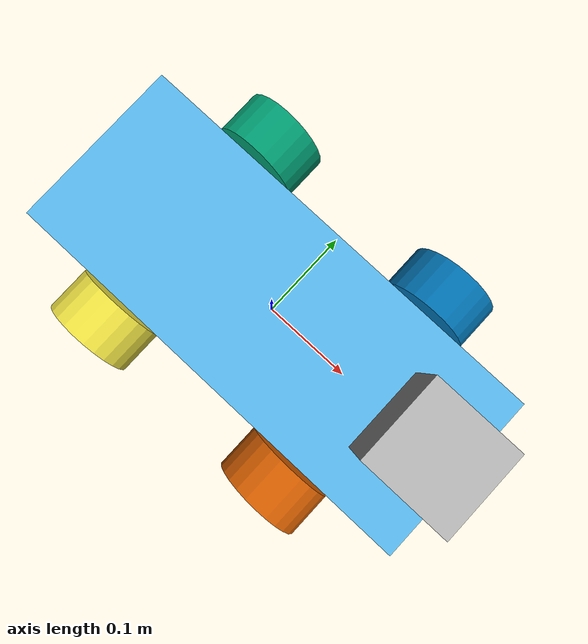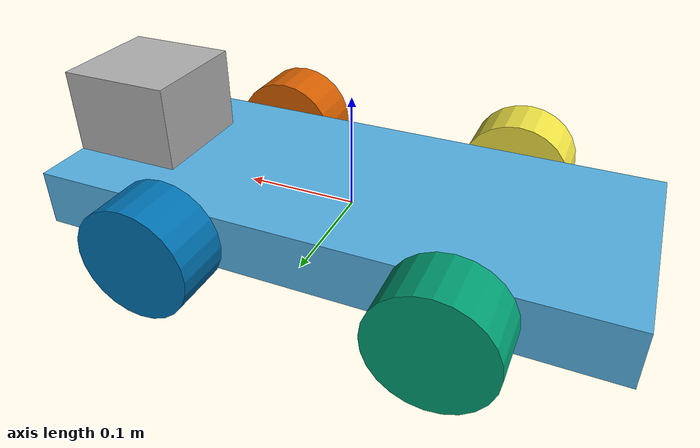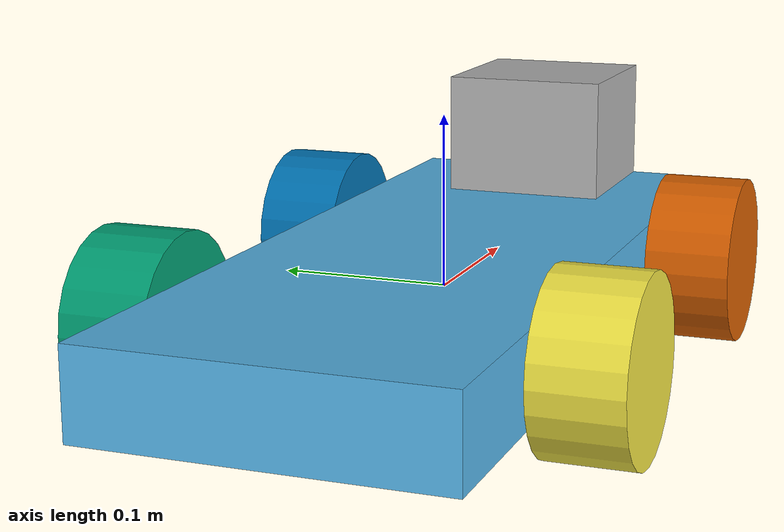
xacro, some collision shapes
<?xml version='1.0'?>

<robot name="my_robot" xmlns:xacro="http://www.ros.org/wiki/xacro">
  <xacro:include filename="$(find my_robot)/urdf/my_robot.gazebo" />
  <link name="robot_footprint"></link>

  <joint name="robot_footprint_joint" type="fixed">
    <origin xyz="0 0 0" rpy="0 0 0" />
    <parent link="robot_footprint"/>
    <child link="chassis" />
  </joint>

  <link name='chassis'>
    <pose>0 0 0.1 0 0 0</pose>

    <inertial>
      <mass value="10.0"/>
      <origin xyz="0.0 0 0" rpy=" 0 0 0"/>
      <inertia
          ixx="0.1" ixy="0" ixz="0"
          iyy="0.1" iyz="0"
          izz="0.1"
      />
    </inertial>

    <collision name='collision'>
      <origin xyz="0 0 0" rpy=" 0 0 0"/>
      <geometry>
        <box size=".5 .2 .05"/>
      </geometry>
    </collision>

    <visual name='chassis_visual'>
      <origin xyz="0 0 0" rpy=" 0 0 0"/>
      <geometry>
        <box size=".5 .2 .05"/>
      </geometry>
    </visual>
  </link>

  <link name='left_back_wheel'>
    <inertial>
      <mass value="5.0"/>
      <origin xyz="0 0 0" rpy="0 1.5707 1.5707"/>
      <inertia
          ixx="0.1" ixy="0" ixz="0"
          iyy="0.1" iyz="0"
          izz="0.1"
      />
    </inertial>

    <collision name='left_back_wheel_collision'>
      <origin xyz="0 0 0" rpy="0 1.5707 1.5707"/>
      <geometry>
        <cylinder length = "0.05" radius="0.05"/>
      </geometry>
    </collision>

    <visual name='left_back_wheel_visual'>
      <origin xyz="0 0 0" rpy="0 1.5707 1.5707"/>
      <geometry>
        <cylinder length = "0.05" radius="0.05"/>
      </geometry>
    </visual>

  </link>

  <joint type="continuous" name="left_back_wheel_hinge">
    <origin xyz="-0.12 0.127 0" rpy="0 0 0"/>
    <child link="left_back_wheel"/>
    <parent link="chassis"/>
    <axis xyz="0 1 0" rpy="0 0 0"/>
    <limit effort="10000" velocity="1000"/>
    <dynamics damping="1.0" friction="1.0"/>
  </joint>

  <link name='right_back_wheel'>
    <inertial>
      <mass value="5.0"/>
      <origin xyz="0 0 0" rpy="0 1.5707 1.5707"/>
      <inertia
          ixx="0.1" ixy="0" ixz="0"
          iyy="0.1" iyz="0"
          izz="0.1"
      />
    </inertial>

    <collision name='right_back_wheel_collision'>
      <origin xyz="0 0 0" rpy="0 1.5707 1.5707"/>
      <geometry>
        <cylinder length = "0.05" radius="0.05"/>
      </geometry>
    </collision>

    <visual name='right_back_wheel_visual'>
      <origin xyz="0 0 0" rpy="0 1.5707 1.5707"/>
      <geometry>
        <cylinder length = "0.05" radius="0.05"/>
      </geometry>
    </visual>

  </link>

  <joint type="continuous" name="right_back_wheel_hinge">
    <origin xyz="-0.12 -0.127 0" rpy="0 0 0"/>
    <child link="right_back_wheel"/>
    <parent link="chassis"/>
    <axis xyz="0 1 0" rpy="0 0 0"/>
    <limit effort="10000" velocity="1000"/>
    <dynamics damping="1.0" friction="1.0"/>
  </joint>

  <link name='left_front_wheel'>
    <inertial>
      <mass value="5.0"/>
      <origin xyz="0 0 0" rpy="0 1.5707 1.5707"/>
      <inertia
          ixx="0.1" ixy="0" ixz="0"
          iyy="0.1" iyz="0"
          izz="0.1"
      />
    </inertial>

    <collision name='left_front_wheel_collision'>
      <origin xyz="0 0 0" rpy="0 1.5707 1.5707"/>
      <geometry>
        <cylinder length = "0.05" radius="0.05"/>
      </geometry>
    </collision>

    <visual name='left_front_wheel_visual'>
      <origin xyz="0 0 0" rpy="0 1.5707 1.5707"/>
      <geometry>
        <cylinder length = "0.05" radius="0.05"/>
      </geometry>
    </visual>

  </link>

  <joint type="continuous" name="left_front_wheel_hinge">
    <origin xyz="0.12 0.127 0" rpy="0 0 0"/>
    <child link="left_front_wheel"/>
    <parent link="chassis"/>
    <axis xyz="0 1 0" rpy="0 0 0"/>
    <limit effort="10000" velocity="1000"/>
    <dynamics damping="1.0" friction="1.0"/>
  </joint>

  <link name='right_front_wheel'>
    <inertial>
      <mass value="5.0"/>
      <origin xyz="0 0 0" rpy="0 1.5707 1.5707"/>
      <inertia
          ixx="0.1" ixy="0" ixz="0"
          iyy="0.1" iyz="0"
          izz="0.1"
      />
    </inertial>

    <collision name='right_front_wheel_collision'>
      <origin xyz="0 0 0" rpy="0 1.5707 1.5707"/>
      <geometry>
        <cylinder length = "0.05" radius="0.05"/>
      </geometry>
    </collision>

    <visual name='right_front_wheel_visual'>
      <origin xyz="0 0 0" rpy="0 1.5707 1.5707"/>
      <geometry>
        <cylinder length = "0.05" radius="0.05"/>
      </geometry>
    </visual>

  </link>

  <joint type="continuous" name="right_front_wheel_hinge">
    <origin xyz="0.12 -0.127 0" rpy="0 0 0"/>
    <child link="right_front_wheel"/>
    <parent link="chassis"/>
    <axis xyz="0 1 0" rpy="0 0 0"/>
    <limit effort="10000" velocity="1000"/>
    <dynamics damping="1.0" friction="1.0"/>
  </joint>

  <link name = 'camera'>
    <inertial>
      <mass value="0.2"/>
      <origin xyz ="0 0 0" rpy="0 0 0"/>
      <inertia
        ixx="1e-6" ixy="0" ixz="0"
        iyy="1e-6" iyz="0"
        izz="1e-6"/>
    </inertial>

    <collision name='camera_collision'>
      <origin xyz="0 0 0" rpy="0 0 0"/>
      <geometry>
        <box size = "0.05 0.05 0.05"/>
      </geometry>
    </collision>

    <visual name='camera_visual'>
      <origin xyz="0 0 0" rpy="0 0 0"/>
      <geometry>
        <box size = "0.05 0.05 0.05"/>
      </geometry>
    </visual>
  </link>

  <joint type="fixed" name="camera_joint">
    <origin xyz="0.25 0 0" rpy="0 0 0"/>
    <child link="camera"/>
    <parent link="chassis"/>
    <axis xyz="0 1 0" rpy="0 0 0"/>
  </joint>

  <link name = 'hokuyo'>
    <inertial>
      <origin xyz ="0 0 0" rpy="0 0 0"/>
      <mass value="1e-5"/>
      <inertia
        ixx="1e-6" ixy="0" ixz="0"
        iyy="1e-6" iyz="0"
        izz="1e-6"/>
    </inertial>

    <collision name='hokuyo_collision'>
      <origin xyz="0 0 0" rpy="0 0 0"/>
      <geometry>
        <box size = "0.1 0.1 0.1"/>
      </geometry>
    </collision>

    <visual name='hokuyo_visual'>
      <origin xyz="0 0 0" rpy="0 0 0"/>
      <geometry>
        <mesh filename="package://my_robot/meshes/hokuyo.dae"/>
      </geometry>
    </visual>
  </link>

  <joint type="fixed" name="hokuyo_joint">
    <origin xyz="0.2 0 0.05" rpy="0 0 0"/>
    <child link="hokuyo"/>
    <parent link="chassis"/>
    <axis xyz="0 1 0" rpy="0 0 0"/>
  </joint>

</robot>
